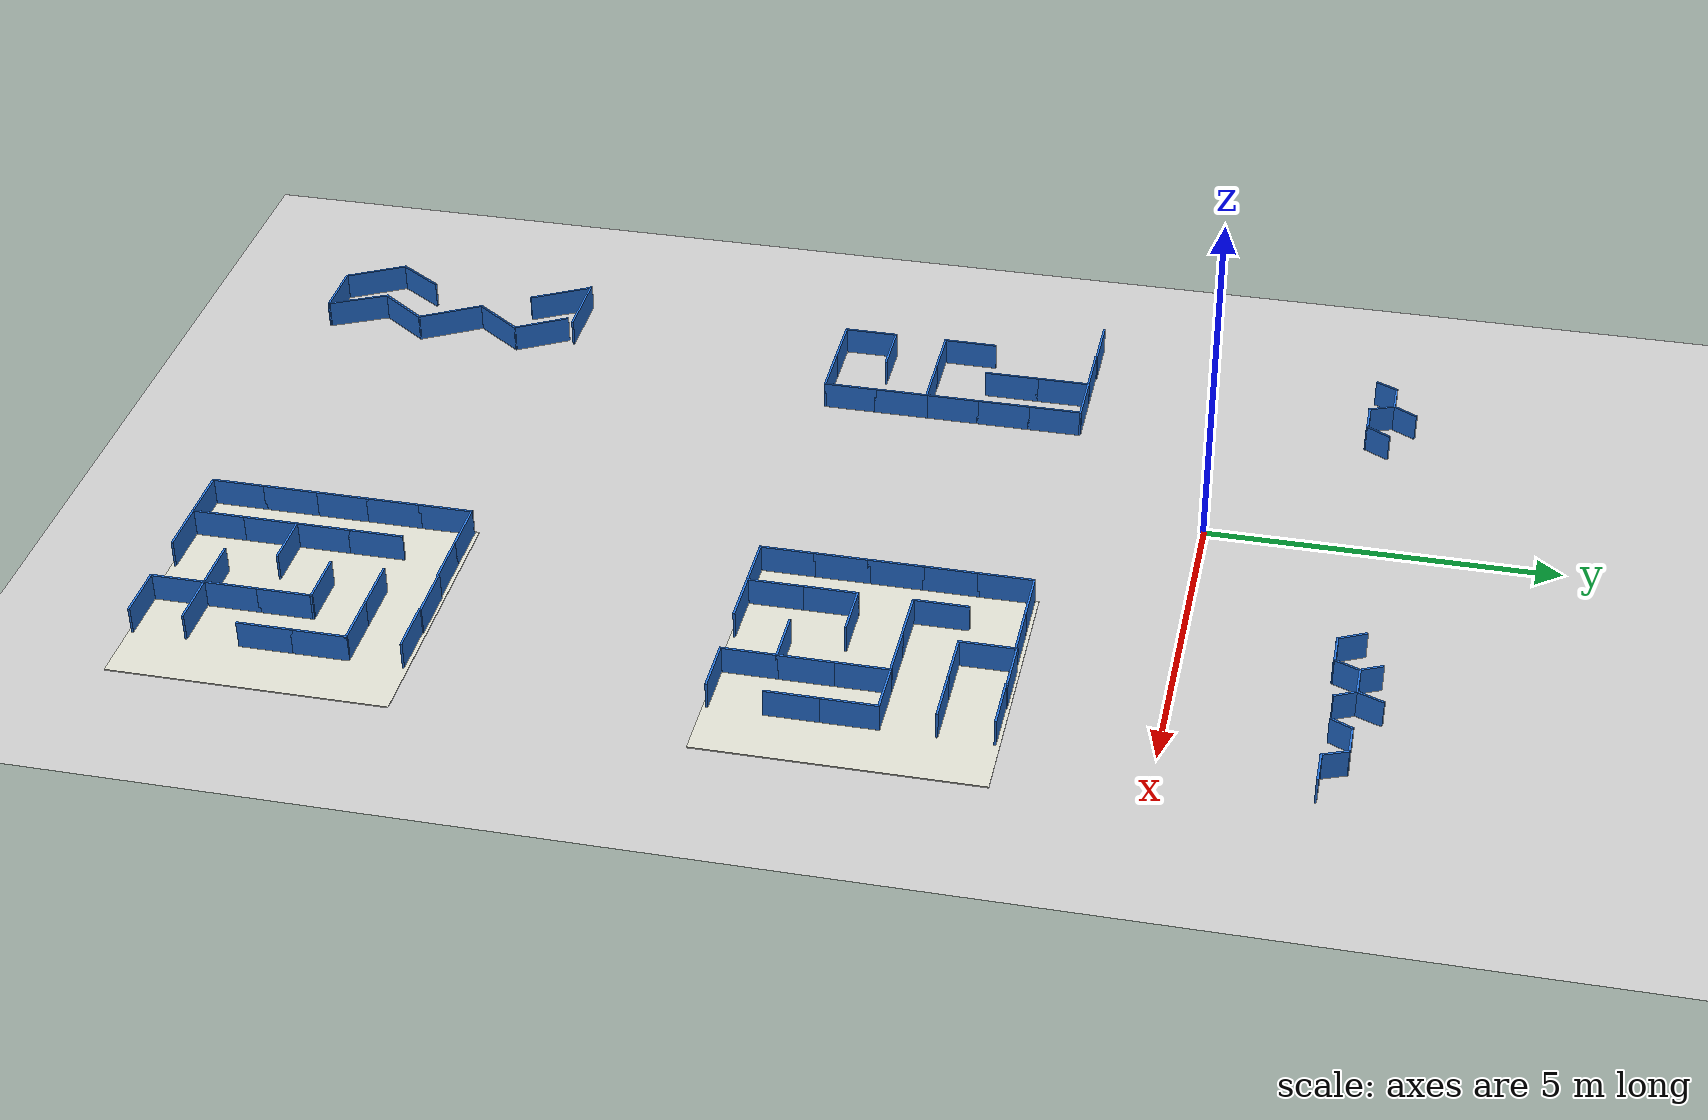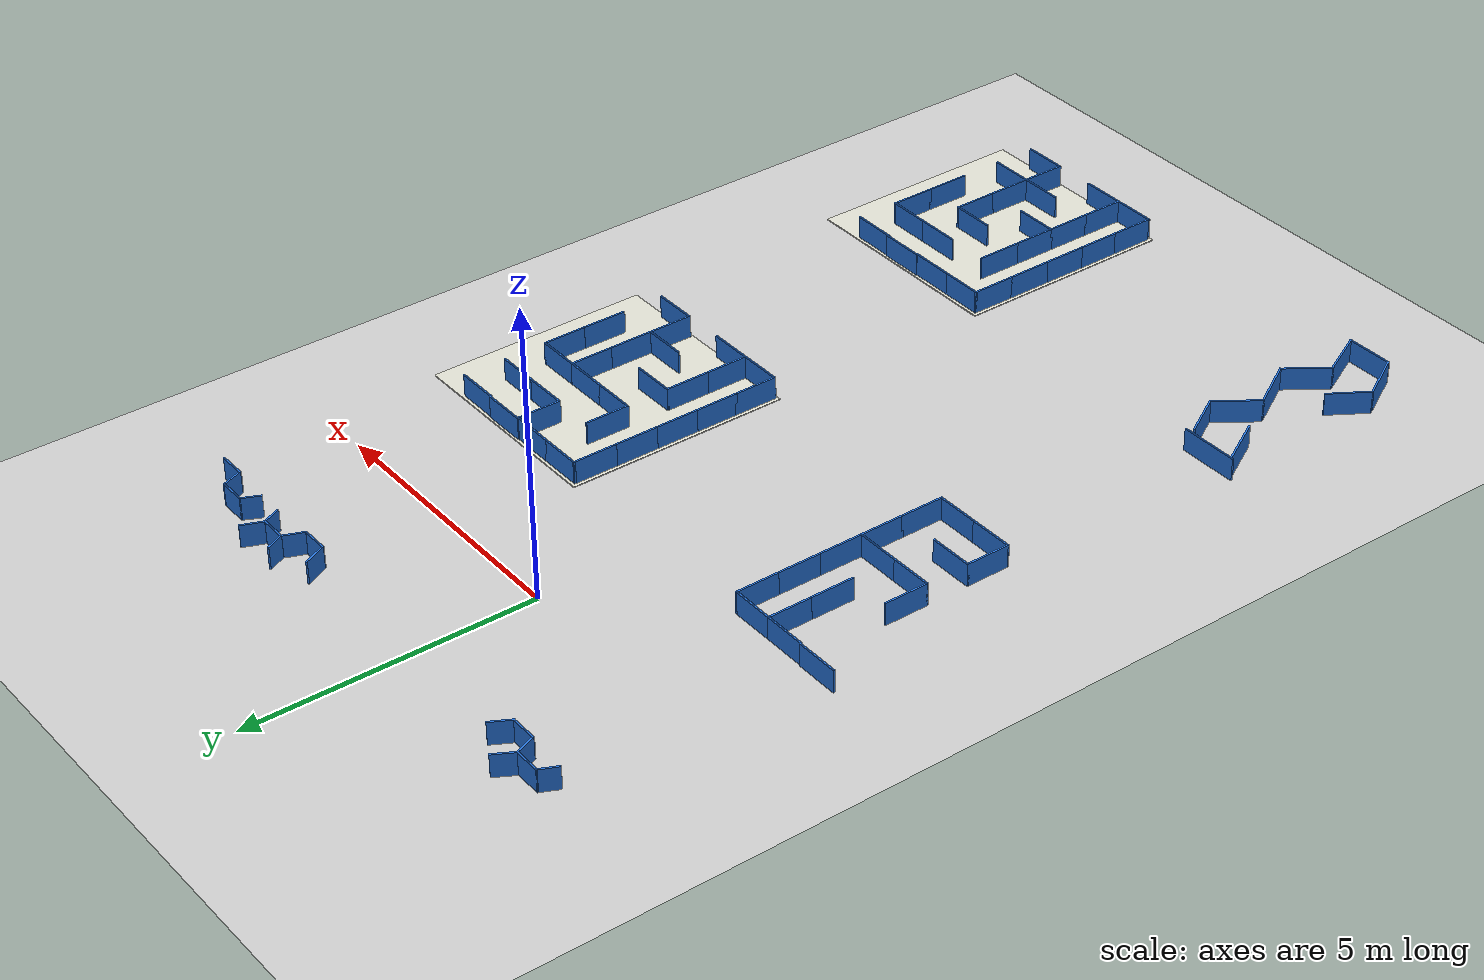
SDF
<sdf version="1.10">
 <world name="nhom8_maze_multi">
  <model name="ground_plane">
   <static>true</static>
   <link name="link">
    <collision name="collision">
     <geometry><plane><normal>0 0 1</normal><size>80.0 80.0</size></plane></geometry>
     <surface><friction><ode><mu>40</mu></ode></friction></surface>
    </collision>
    <visual name="visual">
     <geometry><plane><normal>0 0 1</normal><size>80.0 80.0</size></plane></geometry>
     <material>
      <ambient>0.8 0.8 0.8 1</ambient>
      <diffuse>0.8 0.8 0.8 1</diffuse>
      <specular>0.8 0.8 0.8 1</specular>
     </material>
    </visual>
   </link>
  </model>
  <model name="delta_2_wall_002">
   <static>true</static>
   <pose>-3.158700 -13.911000 0.2000 0 0 0.000000</pose>
   <link name="link">
    <collision name="col"><geometry><box><size>0.8626 0.0300 0.4000</size></box></geometry></collision>
    <visual name="vis">
     <geometry><box><size>0.8626 0.0300 0.4000</size></box></geometry>
     <material><ambient>0.15 0.45 0.85 1</ambient><diffuse>0.15 0.45 0.85 1</diffuse></material>
    </visual>
   </link>
  </model>
  <model name="delta_2_wall_003">
   <static>true</static>
   <pose>-2.857750 -10.539200 0.2000 0 0 -1.047182</pose>
   <link name="link">
    <collision name="col"><geometry><box><size>0.8522 0.0300 0.4000</size></box></geometry></collision>
    <visual name="vis">
     <geometry><box><size>0.8522 0.0300 0.4000</size></box></geometry>
     <material><ambient>0.15 0.45 0.85 1</ambient><diffuse>0.15 0.45 0.85 1</diffuse></material>
    </visual>
   </link>
  </model>
  <model name="delta_2_wall_004">
   <static>true</static>
   <pose>-3.759150 -10.492700 0.2000 0 0 -1.062197</pose>
   <link name="link">
    <collision name="col"><geometry><box><size>0.9514 0.0300 0.4000</size></box></geometry></collision>
    <visual name="vis">
     <geometry><box><size>0.9514 0.0300 0.4000</size></box></geometry>
     <material><ambient>0.15 0.45 0.85 1</ambient><diffuse>0.15 0.45 0.85 1</diffuse></material>
    </visual>
   </link>
  </model>
  <model name="delta_2_wall_005">
   <static>true</static>
   <pose>-2.896850 -12.000400 0.2000 0 0 -1.047181</pose>
   <link name="link">
    <collision name="col"><geometry><box><size>1.0074 0.0300 0.4000</size></box></geometry></collision>
    <visual name="vis">
     <geometry><box><size>1.0074 0.0300 0.4000</size></box></geometry>
     <material><ambient>0.15 0.45 0.85 1</ambient><diffuse>0.15 0.45 0.85 1</diffuse></material>
    </visual>
   </link>
  </model>
  <model name="delta_2_wall_006">
   <static>true</static>
   <pose>-2.942050 -13.507150 0.2000 0 0 -1.111713</pose>
   <link name="link">
    <collision name="col"><geometry><box><size>0.9309 0.0300 0.4000</size></box></geometry></collision>
    <visual name="vis">
     <geometry><box><size>0.9309 0.0300 0.4000</size></box></geometry>
     <material><ambient>0.15 0.45 0.85 1</ambient><diffuse>0.15 0.45 0.85 1</diffuse></material>
    </visual>
   </link>
  </model>
  <model name="delta_2_wall_008">
   <static>true</static>
   <pose>-3.799050 -13.507750 0.2000 0 0 -1.063616</pose>
   <link name="link">
    <collision name="col"><geometry><box><size>0.9526 0.0300 0.4000</size></box></geometry></collision>
    <visual name="vis">
     <geometry><box><size>0.9526 0.0300 0.4000</size></box></geometry>
     <material><ambient>0.15 0.45 0.85 1</ambient><diffuse>0.15 0.45 0.85 1</diffuse></material>
    </visual>
   </link>
  </model>
  <model name="delta_2_wall_010">
   <static>true</static>
   <pose>-2.897050 -12.763500 0.2000 0 0 0.946942</pose>
   <link name="link">
    <collision name="col"><geometry><box><size>0.8674 0.0300 0.4000</size></box></geometry></collision>
    <visual name="vis">
     <geometry><box><size>0.8674 0.0300 0.4000</size></box></geometry>
     <material><ambient>0.15 0.45 0.85 1</ambient><diffuse>0.15 0.45 0.85 1</diffuse></material>
    </visual>
   </link>
  </model>
  <model name="delta_2_wall_011">
   <static>true</static>
   <pose>-2.896700 -11.236150 0.2000 0 0 0.948768</pose>
   <link name="link">
    <collision name="col"><geometry><box><size>0.8691 0.0300 0.4000</size></box></geometry></collision>
    <visual name="vis">
     <geometry><box><size>0.8691 0.0300 0.4000</size></box></geometry>
     <material><ambient>0.15 0.45 0.85 1</ambient><diffuse>0.15 0.45 0.85 1</diffuse></material>
    </visual>
   </link>
  </model>
  <model name="delta_2_wall_012">
   <static>true</static>
   <pose>-3.817950 -12.790800 0.2000 0 0 0.991507</pose>
   <link name="link">
    <collision name="col"><geometry><box><size>0.7798 0.0300 0.4000</size></box></geometry></collision>
    <visual name="vis">
     <geometry><box><size>0.7798 0.0300 0.4000</size></box></geometry>
     <material><ambient>0.15 0.45 0.85 1</ambient><diffuse>0.15 0.45 0.85 1</diffuse></material>
    </visual>
   </link>
  </model>
  <model name="delta_2_wall_017">
   <static>true</static>
   <pose>-3.505100 -10.077200 0.2000 0 0 0.000000</pose>
   <link name="link">
    <collision name="col"><geometry><box><size>1.0600 0.0300 0.4000</size></box></geometry></collision>
    <visual name="vis">
     <geometry><box><size>1.0600 0.0300 0.4000</size></box></geometry>
     <material><ambient>0.15 0.45 0.85 1</ambient><diffuse>0.15 0.45 0.85 1</diffuse></material>
    </visual>
   </link>
  </model>
  <model name="ortho_1_wall_000">
   <static>true</static>
   <pose>2.082400 -10.465950 0.2000 0 0 1.570796</pose>
   <link name="link">
    <collision name="col"><geometry><box><size>0.7971 0.0300 0.4000</size></box></geometry></collision>
    <visual name="vis">
     <geometry><box><size>0.7971 0.0300 0.4000</size></box></geometry>
     <material><ambient>0.15 0.45 0.85 1</ambient><diffuse>0.15 0.45 0.85 1</diffuse></material>
    </visual>
   </link>
  </model>
  <model name="ortho_1_wall_001">
   <static>true</static>
   <pose>2.082400 -11.233000 0.2000 0 0 1.570796</pose>
   <link name="link">
    <collision name="col"><geometry><box><size>0.7970 0.0300 0.4000</size></box></geometry></collision>
    <visual name="vis">
     <geometry><box><size>0.7970 0.0300 0.4000</size></box></geometry>
     <material><ambient>0.15 0.45 0.85 1</ambient><diffuse>0.15 0.45 0.85 1</diffuse></material>
    </visual>
   </link>
  </model>
  <model name="ortho_1_wall_002">
   <static>true</static>
   <pose>2.082400 -12.000000 0.2000 0 0 1.570796</pose>
   <link name="link">
    <collision name="col"><geometry><box><size>0.7970 0.0300 0.4000</size></box></geometry></collision>
    <visual name="vis">
     <geometry><box><size>0.7970 0.0300 0.4000</size></box></geometry>
     <material><ambient>0.15 0.45 0.85 1</ambient><diffuse>0.15 0.45 0.85 1</diffuse></material>
    </visual>
   </link>
  </model>
  <model name="ortho_1_wall_003">
   <static>true</static>
   <pose>2.082400 -12.767000 0.2000 0 0 1.570796</pose>
   <link name="link">
    <collision name="col"><geometry><box><size>0.7970 0.0300 0.4000</size></box></geometry></collision>
    <visual name="vis">
     <geometry><box><size>0.7970 0.0300 0.4000</size></box></geometry>
     <material><ambient>0.15 0.45 0.85 1</ambient><diffuse>0.15 0.45 0.85 1</diffuse></material>
    </visual>
   </link>
  </model>
  <model name="ortho_1_wall_004">
   <static>true</static>
   <pose>2.082400 -13.534050 0.2000 0 0 1.570796</pose>
   <link name="link">
    <collision name="col"><geometry><box><size>0.7971 0.0300 0.4000</size></box></geometry></collision>
    <visual name="vis">
     <geometry><box><size>0.7971 0.0300 0.4000</size></box></geometry>
     <material><ambient>0.15 0.45 0.85 1</ambient><diffuse>0.15 0.45 0.85 1</diffuse></material>
    </visual>
   </link>
  </model>
  <model name="ortho_1_wall_005">
   <static>true</static>
   <pose>2.849500 -11.233000 0.2000 0 0 1.570796</pose>
   <link name="link">
    <collision name="col"><geometry><box><size>0.7970 0.0300 0.4000</size></box></geometry></collision>
    <visual name="vis">
     <geometry><box><size>0.7970 0.0300 0.4000</size></box></geometry>
     <material><ambient>0.15 0.45 0.85 1</ambient><diffuse>0.15 0.45 0.85 1</diffuse></material>
    </visual>
   </link>
  </model>
  <model name="ortho_1_wall_006">
   <static>true</static>
   <pose>2.849500 -12.000000 0.2000 0 0 1.570796</pose>
   <link name="link">
    <collision name="col"><geometry><box><size>0.7970 0.0300 0.4000</size></box></geometry></collision>
    <visual name="vis">
     <geometry><box><size>0.7970 0.0300 0.4000</size></box></geometry>
     <material><ambient>0.15 0.45 0.85 1</ambient><diffuse>0.15 0.45 0.85 1</diffuse></material>
    </visual>
   </link>
  </model>
  <model name="ortho_1_wall_007">
   <static>true</static>
   <pose>2.849500 -12.767000 0.2000 0 0 1.570796</pose>
   <link name="link">
    <collision name="col"><geometry><box><size>0.7970 0.0300 0.4000</size></box></geometry></collision>
    <visual name="vis">
     <geometry><box><size>0.7970 0.0300 0.4000</size></box></geometry>
     <material><ambient>0.15 0.45 0.85 1</ambient><diffuse>0.15 0.45 0.85 1</diffuse></material>
    </visual>
   </link>
  </model>
  <model name="ortho_1_wall_008">
   <static>true</static>
   <pose>2.849500 -13.534050 0.2000 0 0 1.570796</pose>
   <link name="link">
    <collision name="col"><geometry><box><size>0.7971 0.0300 0.4000</size></box></geometry></collision>
    <visual name="vis">
     <geometry><box><size>0.7971 0.0300 0.4000</size></box></geometry>
     <material><ambient>0.15 0.45 0.85 1</ambient><diffuse>0.15 0.45 0.85 1</diffuse></material>
    </visual>
   </link>
  </model>
  <model name="ortho_1_wall_009">
   <static>true</static>
   <pose>4.383500 -12.000000 0.2000 0 0 1.570796</pose>
   <link name="link">
    <collision name="col"><geometry><box><size>0.7970 0.0300 0.4000</size></box></geometry></collision>
    <visual name="vis">
     <geometry><box><size>0.7970 0.0300 0.4000</size></box></geometry>
     <material><ambient>0.15 0.45 0.85 1</ambient><diffuse>0.15 0.45 0.85 1</diffuse></material>
    </visual>
   </link>
  </model>
  <model name="ortho_1_wall_010">
   <static>true</static>
   <pose>4.383500 -12.767000 0.2000 0 0 1.570796</pose>
   <link name="link">
    <collision name="col"><geometry><box><size>0.7970 0.0300 0.4000</size></box></geometry></collision>
    <visual name="vis">
     <geometry><box><size>0.7970 0.0300 0.4000</size></box></geometry>
     <material><ambient>0.15 0.45 0.85 1</ambient><diffuse>0.15 0.45 0.85 1</diffuse></material>
    </visual>
   </link>
  </model>
  <model name="ortho_1_wall_011">
   <static>true</static>
   <pose>4.383500 -13.534050 0.2000 0 0 1.570796</pose>
   <link name="link">
    <collision name="col"><geometry><box><size>0.7971 0.0300 0.4000</size></box></geometry></collision>
    <visual name="vis">
     <geometry><box><size>0.7971 0.0300 0.4000</size></box></geometry>
     <material><ambient>0.15 0.45 0.85 1</ambient><diffuse>0.15 0.45 0.85 1</diffuse></material>
    </visual>
   </link>
  </model>
  <model name="ortho_1_wall_012">
   <static>true</static>
   <pose>5.150500 -11.233000 0.2000 0 0 1.570796</pose>
   <link name="link">
    <collision name="col"><geometry><box><size>0.7970 0.0300 0.4000</size></box></geometry></collision>
    <visual name="vis">
     <geometry><box><size>0.7970 0.0300 0.4000</size></box></geometry>
     <material><ambient>0.15 0.45 0.85 1</ambient><diffuse>0.15 0.45 0.85 1</diffuse></material>
    </visual>
   </link>
  </model>
  <model name="ortho_1_wall_013">
   <static>true</static>
   <pose>5.150500 -12.000000 0.2000 0 0 1.570796</pose>
   <link name="link">
    <collision name="col"><geometry><box><size>0.7970 0.0300 0.4000</size></box></geometry></collision>
    <visual name="vis">
     <geometry><box><size>0.7970 0.0300 0.4000</size></box></geometry>
     <material><ambient>0.15 0.45 0.85 1</ambient><diffuse>0.15 0.45 0.85 1</diffuse></material>
    </visual>
   </link>
  </model>
  <model name="ortho_1_wall_019">
   <static>true</static>
   <pose>2.465950 -10.082400 0.2000 0 0 0.000000</pose>
   <link name="link">
    <collision name="col"><geometry><box><size>0.7971 0.0300 0.4000</size></box></geometry></collision>
    <visual name="vis">
     <geometry><box><size>0.7971 0.0300 0.4000</size></box></geometry>
     <material><ambient>0.15 0.45 0.85 1</ambient><diffuse>0.15 0.45 0.85 1</diffuse></material>
    </visual>
   </link>
  </model>
  <model name="ortho_1_wall_020">
   <static>true</static>
   <pose>3.233000 -10.082400 0.2000 0 0 0.000000</pose>
   <link name="link">
    <collision name="col"><geometry><box><size>0.7970 0.0300 0.4000</size></box></geometry></collision>
    <visual name="vis">
     <geometry><box><size>0.7970 0.0300 0.4000</size></box></geometry>
     <material><ambient>0.15 0.45 0.85 1</ambient><diffuse>0.15 0.45 0.85 1</diffuse></material>
    </visual>
   </link>
  </model>
  <model name="ortho_1_wall_021">
   <static>true</static>
   <pose>4.767000 -10.082400 0.2000 0 0 0.000000</pose>
   <link name="link">
    <collision name="col"><geometry><box><size>0.7970 0.0300 0.4000</size></box></geometry></collision>
    <visual name="vis">
     <geometry><box><size>0.7970 0.0300 0.4000</size></box></geometry>
     <material><ambient>0.15 0.45 0.85 1</ambient><diffuse>0.15 0.45 0.85 1</diffuse></material>
    </visual>
   </link>
  </model>
  <model name="ortho_1_wall_023">
   <static>true</static>
   <pose>4.000000 -10.849500 0.2000 0 0 0.000000</pose>
   <link name="link">
    <collision name="col"><geometry><box><size>0.7970 0.0300 0.4000</size></box></geometry></collision>
    <visual name="vis">
     <geometry><box><size>0.7970 0.0300 0.4000</size></box></geometry>
     <material><ambient>0.15 0.45 0.85 1</ambient><diffuse>0.15 0.45 0.85 1</diffuse></material>
    </visual>
   </link>
  </model>
  <model name="ortho_1_wall_024">
   <static>true</static>
   <pose>4.767000 -10.849500 0.2000 0 0 0.000000</pose>
   <link name="link">
    <collision name="col"><geometry><box><size>0.7970 0.0300 0.4000</size></box></geometry></collision>
    <visual name="vis">
     <geometry><box><size>0.7970 0.0300 0.4000</size></box></geometry>
     <material><ambient>0.15 0.45 0.85 1</ambient><diffuse>0.15 0.45 0.85 1</diffuse></material>
    </visual>
   </link>
  </model>
  <model name="ortho_1_wall_025">
   <static>true</static>
   <pose>4.000000 -11.616500 0.2000 0 0 0.000000</pose>
   <link name="link">
    <collision name="col"><geometry><box><size>0.7970 0.0300 0.4000</size></box></geometry></collision>
    <visual name="vis">
     <geometry><box><size>0.7970 0.0300 0.4000</size></box></geometry>
     <material><ambient>0.15 0.45 0.85 1</ambient><diffuse>0.15 0.45 0.85 1</diffuse></material>
    </visual>
   </link>
  </model>
  <model name="ortho_1_wall_026">
   <static>true</static>
   <pose>3.233000 -12.383500 0.2000 0 0 0.000000</pose>
   <link name="link">
    <collision name="col"><geometry><box><size>0.7970 0.0300 0.4000</size></box></geometry></collision>
    <visual name="vis">
     <geometry><box><size>0.7970 0.0300 0.4000</size></box></geometry>
     <material><ambient>0.15 0.45 0.85 1</ambient><diffuse>0.15 0.45 0.85 1</diffuse></material>
    </visual>
   </link>
  </model>
  <model name="ortho_1_wall_028">
   <static>true</static>
   <pose>4.000000 -13.150500 0.2000 0 0 0.000000</pose>
   <link name="link">
    <collision name="col"><geometry><box><size>0.7970 0.0300 0.4000</size></box></geometry></collision>
    <visual name="vis">
     <geometry><box><size>0.7970 0.0300 0.4000</size></box></geometry>
     <material><ambient>0.15 0.45 0.85 1</ambient><diffuse>0.15 0.45 0.85 1</diffuse></material>
    </visual>
   </link>
  </model>
  <model name="ortho_1_wall_029">
   <static>true</static>
   <pose>4.767000 -13.150500 0.2000 0 0 0.000000</pose>
   <link name="link">
    <collision name="col"><geometry><box><size>0.7970 0.0300 0.4000</size></box></geometry></collision>
    <visual name="vis">
     <geometry><box><size>0.7970 0.0300 0.4000</size></box></geometry>
     <material><ambient>0.15 0.45 0.85 1</ambient><diffuse>0.15 0.45 0.85 1</diffuse></material>
    </visual>
   </link>
  </model>
  <model name="ortho_1_wall_030">
   <static>true</static>
   <pose>2.465950 -13.917600 0.2000 0 0 0.000000</pose>
   <link name="link">
    <collision name="col"><geometry><box><size>0.7971 0.0300 0.4000</size></box></geometry></collision>
    <visual name="vis">
     <geometry><box><size>0.7971 0.0300 0.4000</size></box></geometry>
     <material><ambient>0.15 0.45 0.85 1</ambient><diffuse>0.15 0.45 0.85 1</diffuse></material>
    </visual>
   </link>
  </model>
  <model name="ortho_1_wall_031">
   <static>true</static>
   <pose>3.233000 -13.917600 0.2000 0 0 0.000000</pose>
   <link name="link">
    <collision name="col"><geometry><box><size>0.7970 0.0300 0.4000</size></box></geometry></collision>
    <visual name="vis">
     <geometry><box><size>0.7970 0.0300 0.4000</size></box></geometry>
     <material><ambient>0.15 0.45 0.85 1</ambient><diffuse>0.15 0.45 0.85 1</diffuse></material>
    </visual>
   </link>
  </model>
  <model name="ortho_1_wall_032">
   <static>true</static>
   <pose>4.767000 -13.917600 0.2000 0 0 0.000000</pose>
   <link name="link">
    <collision name="col"><geometry><box><size>0.7970 0.0300 0.4000</size></box></geometry></collision>
    <visual name="vis">
     <geometry><box><size>0.7970 0.0300 0.4000</size></box></geometry>
     <material><ambient>0.15 0.45 0.85 1</ambient><diffuse>0.15 0.45 0.85 1</diffuse></material>
    </visual>
   </link>
  </model>
  <model name="ortho_1_wall_034">
   <static>true</static>
   <pose>4.003400 -10.067400 0.2000 0 0 0.000000</pose>
   <link name="link">
    <collision name="col"><geometry><box><size>0.7950 0.0300 0.4000</size></box></geometry></collision>
    <visual name="vis">
     <geometry><box><size>0.7950 0.0300 0.4000</size></box></geometry>
     <material><ambient>0.15 0.45 0.85 1</ambient><diffuse>0.15 0.45 0.85 1</diffuse></material>
    </visual>
   </link>
  </model>
  <model name="ortho_1_floor">
   <static>true</static>
   <pose>4.000000 -12.000000 -0.02 0 0 0</pose>
   <link name="link">
    <collision name="col"><geometry><box><size>3.9652 3.9652 0.03</size></box></geometry></collision>
    <visual name="vis">
     <geometry><box><size>3.9652 3.9652 0.03</size></box></geometry>
     <material><ambient>0.87 0.87 0.82 1</ambient><diffuse>0.87 0.87 0.82 1</diffuse></material>
    </visual>
   </link>
  </model>
  <model name="ortho_4_wall_009">
   <static>true</static>
   <pose>-3.616500 -4.000000 0.2000 0 0 1.570796</pose>
   <link name="link">
    <collision name="col"><geometry><box><size>0.7970 0.0300 0.4000</size></box></geometry></collision>
    <visual name="vis">
     <geometry><box><size>0.7970 0.0300 0.4000</size></box></geometry>
     <material><ambient>0.15 0.45 0.85 1</ambient><diffuse>0.15 0.45 0.85 1</diffuse></material>
    </visual>
   </link>
  </model>
  <model name="ortho_4_wall_010">
   <static>true</static>
   <pose>-3.616500 -5.534050 0.2000 0 0 1.570796</pose>
   <link name="link">
    <collision name="col"><geometry><box><size>0.7971 0.0300 0.4000</size></box></geometry></collision>
    <visual name="vis">
     <geometry><box><size>0.7971 0.0300 0.4000</size></box></geometry>
     <material><ambient>0.15 0.45 0.85 1</ambient><diffuse>0.15 0.45 0.85 1</diffuse></material>
    </visual>
   </link>
  </model>
  <model name="ortho_4_wall_011">
   <static>true</static>
   <pose>-2.849500 -2.465950 0.2000 0 0 1.570796</pose>
   <link name="link">
    <collision name="col"><geometry><box><size>0.7971 0.0300 0.4000</size></box></geometry></collision>
    <visual name="vis">
     <geometry><box><size>0.7971 0.0300 0.4000</size></box></geometry>
     <material><ambient>0.15 0.45 0.85 1</ambient><diffuse>0.15 0.45 0.85 1</diffuse></material>
    </visual>
   </link>
  </model>
  <model name="ortho_4_wall_012">
   <static>true</static>
   <pose>-2.849500 -3.233000 0.2000 0 0 1.570796</pose>
   <link name="link">
    <collision name="col"><geometry><box><size>0.7970 0.0300 0.4000</size></box></geometry></collision>
    <visual name="vis">
     <geometry><box><size>0.7970 0.0300 0.4000</size></box></geometry>
     <material><ambient>0.15 0.45 0.85 1</ambient><diffuse>0.15 0.45 0.85 1</diffuse></material>
    </visual>
   </link>
  </model>
  <model name="ortho_4_wall_013">
   <static>true</static>
   <pose>-2.082400 -2.465950 0.2000 0 0 1.570796</pose>
   <link name="link">
    <collision name="col"><geometry><box><size>0.7971 0.0300 0.4000</size></box></geometry></collision>
    <visual name="vis">
     <geometry><box><size>0.7971 0.0300 0.4000</size></box></geometry>
     <material><ambient>0.15 0.45 0.85 1</ambient><diffuse>0.15 0.45 0.85 1</diffuse></material>
    </visual>
   </link>
  </model>
  <model name="ortho_4_wall_014">
   <static>true</static>
   <pose>-2.082400 -3.233000 0.2000 0 0 1.570796</pose>
   <link name="link">
    <collision name="col"><geometry><box><size>0.7970 0.0300 0.4000</size></box></geometry></collision>
    <visual name="vis">
     <geometry><box><size>0.7970 0.0300 0.4000</size></box></geometry>
     <material><ambient>0.15 0.45 0.85 1</ambient><diffuse>0.15 0.45 0.85 1</diffuse></material>
    </visual>
   </link>
  </model>
  <model name="ortho_4_wall_015">
   <static>true</static>
   <pose>-2.082400 -4.000000 0.2000 0 0 1.570796</pose>
   <link name="link">
    <collision name="col"><geometry><box><size>0.7970 0.0300 0.4000</size></box></geometry></collision>
    <visual name="vis">
     <geometry><box><size>0.7970 0.0300 0.4000</size></box></geometry>
     <material><ambient>0.15 0.45 0.85 1</ambient><diffuse>0.15 0.45 0.85 1</diffuse></material>
    </visual>
   </link>
  </model>
  <model name="ortho_4_wall_016">
   <static>true</static>
   <pose>-2.082400 -4.767000 0.2000 0 0 1.570796</pose>
   <link name="link">
    <collision name="col"><geometry><box><size>0.7970 0.0300 0.4000</size></box></geometry></collision>
    <visual name="vis">
     <geometry><box><size>0.7970 0.0300 0.4000</size></box></geometry>
     <material><ambient>0.15 0.45 0.85 1</ambient><diffuse>0.15 0.45 0.85 1</diffuse></material>
    </visual>
   </link>
  </model>
  <model name="ortho_4_wall_017">
   <static>true</static>
   <pose>-2.082400 -5.534050 0.2000 0 0 1.570796</pose>
   <link name="link">
    <collision name="col"><geometry><box><size>0.7971 0.0300 0.4000</size></box></geometry></collision>
    <visual name="vis">
     <geometry><box><size>0.7971 0.0300 0.4000</size></box></geometry>
     <material><ambient>0.15 0.45 0.85 1</ambient><diffuse>0.15 0.45 0.85 1</diffuse></material>
    </visual>
   </link>
  </model>
  <model name="ortho_4_wall_020">
   <static>true</static>
   <pose>-3.233000 -2.082400 0.2000 0 0 0.000000</pose>
   <link name="link">
    <collision name="col"><geometry><box><size>0.7970 0.0300 0.4000</size></box></geometry></collision>
    <visual name="vis">
     <geometry><box><size>0.7970 0.0300 0.4000</size></box></geometry>
     <material><ambient>0.15 0.45 0.85 1</ambient><diffuse>0.15 0.45 0.85 1</diffuse></material>
    </visual>
   </link>
  </model>
  <model name="ortho_4_wall_021">
   <static>true</static>
   <pose>-2.465950 -2.082400 0.2000 0 0 0.000000</pose>
   <link name="link">
    <collision name="col"><geometry><box><size>0.7971 0.0300 0.4000</size></box></geometry></collision>
    <visual name="vis">
     <geometry><box><size>0.7971 0.0300 0.4000</size></box></geometry>
     <material><ambient>0.15 0.45 0.85 1</ambient><diffuse>0.15 0.45 0.85 1</diffuse></material>
    </visual>
   </link>
  </model>
  <model name="ortho_4_wall_025">
   <static>true</static>
   <pose>-3.233000 -4.383500 0.2000 0 0 0.000000</pose>
   <link name="link">
    <collision name="col"><geometry><box><size>0.7970 0.0300 0.4000</size></box></geometry></collision>
    <visual name="vis">
     <geometry><box><size>0.7970 0.0300 0.4000</size></box></geometry>
     <material><ambient>0.15 0.45 0.85 1</ambient><diffuse>0.15 0.45 0.85 1</diffuse></material>
    </visual>
   </link>
  </model>
  <model name="ortho_4_wall_026">
   <static>true</static>
   <pose>-2.465950 -4.383500 0.2000 0 0 0.000000</pose>
   <link name="link">
    <collision name="col"><geometry><box><size>0.7971 0.0300 0.4000</size></box></geometry></collision>
    <visual name="vis">
     <geometry><box><size>0.7971 0.0300 0.4000</size></box></geometry>
     <material><ambient>0.15 0.45 0.85 1</ambient><diffuse>0.15 0.45 0.85 1</diffuse></material>
    </visual>
   </link>
  </model>
  <model name="ortho_4_wall_029">
   <static>true</static>
   <pose>-3.233000 -5.150500 0.2000 0 0 0.000000</pose>
   <link name="link">
    <collision name="col"><geometry><box><size>0.7970 0.0300 0.4000</size></box></geometry></collision>
    <visual name="vis">
     <geometry><box><size>0.7970 0.0300 0.4000</size></box></geometry>
     <material><ambient>0.15 0.45 0.85 1</ambient><diffuse>0.15 0.45 0.85 1</diffuse></material>
    </visual>
   </link>
  </model>
  <model name="ortho_4_wall_032">
   <static>true</static>
   <pose>-3.233000 -5.917600 0.2000 0 0 0.000000</pose>
   <link name="link">
    <collision name="col"><geometry><box><size>0.7970 0.0300 0.4000</size></box></geometry></collision>
    <visual name="vis">
     <geometry><box><size>0.7970 0.0300 0.4000</size></box></geometry>
     <material><ambient>0.15 0.45 0.85 1</ambient><diffuse>0.15 0.45 0.85 1</diffuse></material>
    </visual>
   </link>
  </model>
  <model name="ortho_4_wall_033">
   <static>true</static>
   <pose>-2.465950 -5.917600 0.2000 0 0 0.000000</pose>
   <link name="link">
    <collision name="col"><geometry><box><size>0.7971 0.0300 0.4000</size></box></geometry></collision>
    <visual name="vis">
     <geometry><box><size>0.7971 0.0300 0.4000</size></box></geometry>
     <material><ambient>0.15 0.45 0.85 1</ambient><diffuse>0.15 0.45 0.85 1</diffuse></material>
    </visual>
   </link>
  </model>
  <model name="ortho_4_wall_034">
   <static>true</static>
   <pose>-3.996600 -2.067400 0.2000 0 0 0.000000</pose>
   <link name="link">
    <collision name="col"><geometry><box><size>0.7950 0.0300 0.4000</size></box></geometry></collision>
    <visual name="vis">
     <geometry><box><size>0.7950 0.0300 0.4000</size></box></geometry>
     <material><ambient>0.15 0.45 0.85 1</ambient><diffuse>0.15 0.45 0.85 1</diffuse></material>
    </visual>
   </link>
  </model>
  <model name="ortho_5_wall_000">
   <static>true</static>
   <pose>2.082400 -2.465950 0.2000 0 0 1.570796</pose>
   <link name="link">
    <collision name="col"><geometry><box><size>0.7971 0.0300 0.4000</size></box></geometry></collision>
    <visual name="vis">
     <geometry><box><size>0.7971 0.0300 0.4000</size></box></geometry>
     <material><ambient>0.15 0.45 0.85 1</ambient><diffuse>0.15 0.45 0.85 1</diffuse></material>
    </visual>
   </link>
  </model>
  <model name="ortho_5_wall_001">
   <static>true</static>
   <pose>2.082400 -3.233000 0.2000 0 0 1.570796</pose>
   <link name="link">
    <collision name="col"><geometry><box><size>0.7970 0.0300 0.4000</size></box></geometry></collision>
    <visual name="vis">
     <geometry><box><size>0.7970 0.0300 0.4000</size></box></geometry>
     <material><ambient>0.15 0.45 0.85 1</ambient><diffuse>0.15 0.45 0.85 1</diffuse></material>
    </visual>
   </link>
  </model>
  <model name="ortho_5_wall_002">
   <static>true</static>
   <pose>2.082400 -4.000000 0.2000 0 0 1.570796</pose>
   <link name="link">
    <collision name="col"><geometry><box><size>0.7970 0.0300 0.4000</size></box></geometry></collision>
    <visual name="vis">
     <geometry><box><size>0.7970 0.0300 0.4000</size></box></geometry>
     <material><ambient>0.15 0.45 0.85 1</ambient><diffuse>0.15 0.45 0.85 1</diffuse></material>
    </visual>
   </link>
  </model>
  <model name="ortho_5_wall_003">
   <static>true</static>
   <pose>2.082400 -4.767000 0.2000 0 0 1.570796</pose>
   <link name="link">
    <collision name="col"><geometry><box><size>0.7970 0.0300 0.4000</size></box></geometry></collision>
    <visual name="vis">
     <geometry><box><size>0.7970 0.0300 0.4000</size></box></geometry>
     <material><ambient>0.15 0.45 0.85 1</ambient><diffuse>0.15 0.45 0.85 1</diffuse></material>
    </visual>
   </link>
  </model>
  <model name="ortho_5_wall_004">
   <static>true</static>
   <pose>2.082400 -5.534050 0.2000 0 0 1.570796</pose>
   <link name="link">
    <collision name="col"><geometry><box><size>0.7971 0.0300 0.4000</size></box></geometry></collision>
    <visual name="vis">
     <geometry><box><size>0.7971 0.0300 0.4000</size></box></geometry>
     <material><ambient>0.15 0.45 0.85 1</ambient><diffuse>0.15 0.45 0.85 1</diffuse></material>
    </visual>
   </link>
  </model>
  <model name="ortho_5_wall_005">
   <static>true</static>
   <pose>2.849500 -3.233000 0.2000 0 0 1.570796</pose>
   <link name="link">
    <collision name="col"><geometry><box><size>0.7970 0.0300 0.4000</size></box></geometry></collision>
    <visual name="vis">
     <geometry><box><size>0.7970 0.0300 0.4000</size></box></geometry>
     <material><ambient>0.15 0.45 0.85 1</ambient><diffuse>0.15 0.45 0.85 1</diffuse></material>
    </visual>
   </link>
  </model>
  <model name="ortho_5_wall_006">
   <static>true</static>
   <pose>2.849500 -4.767000 0.2000 0 0 1.570796</pose>
   <link name="link">
    <collision name="col"><geometry><box><size>0.7970 0.0300 0.4000</size></box></geometry></collision>
    <visual name="vis">
     <geometry><box><size>0.7970 0.0300 0.4000</size></box></geometry>
     <material><ambient>0.15 0.45 0.85 1</ambient><diffuse>0.15 0.45 0.85 1</diffuse></material>
    </visual>
   </link>
  </model>
  <model name="ortho_5_wall_007">
   <static>true</static>
   <pose>2.849500 -5.534050 0.2000 0 0 1.570796</pose>
   <link name="link">
    <collision name="col"><geometry><box><size>0.7971 0.0300 0.4000</size></box></geometry></collision>
    <visual name="vis">
     <geometry><box><size>0.7971 0.0300 0.4000</size></box></geometry>
     <material><ambient>0.15 0.45 0.85 1</ambient><diffuse>0.15 0.45 0.85 1</diffuse></material>
    </visual>
   </link>
  </model>
  <model name="ortho_5_wall_008">
   <static>true</static>
   <pose>3.616500 -2.465950 0.2000 0 0 1.570796</pose>
   <link name="link">
    <collision name="col"><geometry><box><size>0.7971 0.0300 0.4000</size></box></geometry></collision>
    <visual name="vis">
     <geometry><box><size>0.7971 0.0300 0.4000</size></box></geometry>
     <material><ambient>0.15 0.45 0.85 1</ambient><diffuse>0.15 0.45 0.85 1</diffuse></material>
    </visual>
   </link>
  </model>
  <model name="ortho_5_wall_009">
   <static>true</static>
   <pose>4.383500 -4.000000 0.2000 0 0 1.570796</pose>
   <link name="link">
    <collision name="col"><geometry><box><size>0.7970 0.0300 0.4000</size></box></geometry></collision>
    <visual name="vis">
     <geometry><box><size>0.7970 0.0300 0.4000</size></box></geometry>
     <material><ambient>0.15 0.45 0.85 1</ambient><diffuse>0.15 0.45 0.85 1</diffuse></material>
    </visual>
   </link>
  </model>
  <model name="ortho_5_wall_010">
   <static>true</static>
   <pose>4.383500 -4.767000 0.2000 0 0 1.570796</pose>
   <link name="link">
    <collision name="col"><geometry><box><size>0.7970 0.0300 0.4000</size></box></geometry></collision>
    <visual name="vis">
     <geometry><box><size>0.7970 0.0300 0.4000</size></box></geometry>
     <material><ambient>0.15 0.45 0.85 1</ambient><diffuse>0.15 0.45 0.85 1</diffuse></material>
    </visual>
   </link>
  </model>
  <model name="ortho_5_wall_011">
   <static>true</static>
   <pose>4.383500 -5.534050 0.2000 0 0 1.570796</pose>
   <link name="link">
    <collision name="col"><geometry><box><size>0.7971 0.0300 0.4000</size></box></geometry></collision>
    <visual name="vis">
     <geometry><box><size>0.7971 0.0300 0.4000</size></box></geometry>
     <material><ambient>0.15 0.45 0.85 1</ambient><diffuse>0.15 0.45 0.85 1</diffuse></material>
    </visual>
   </link>
  </model>
  <model name="ortho_5_wall_012">
   <static>true</static>
   <pose>5.150500 -4.000000 0.2000 0 0 1.570796</pose>
   <link name="link">
    <collision name="col"><geometry><box><size>0.7970 0.0300 0.4000</size></box></geometry></collision>
    <visual name="vis">
     <geometry><box><size>0.7970 0.0300 0.4000</size></box></geometry>
     <material><ambient>0.15 0.45 0.85 1</ambient><diffuse>0.15 0.45 0.85 1</diffuse></material>
    </visual>
   </link>
  </model>
  <model name="ortho_5_wall_013">
   <static>true</static>
   <pose>5.150500 -4.767000 0.2000 0 0 1.570796</pose>
   <link name="link">
    <collision name="col"><geometry><box><size>0.7970 0.0300 0.4000</size></box></geometry></collision>
    <visual name="vis">
     <geometry><box><size>0.7970 0.0300 0.4000</size></box></geometry>
     <material><ambient>0.15 0.45 0.85 1</ambient><diffuse>0.15 0.45 0.85 1</diffuse></material>
    </visual>
   </link>
  </model>
  <model name="ortho_5_wall_019">
   <static>true</static>
   <pose>2.465950 -2.082400 0.2000 0 0 0.000000</pose>
   <link name="link">
    <collision name="col"><geometry><box><size>0.7971 0.0300 0.4000</size></box></geometry></collision>
    <visual name="vis">
     <geometry><box><size>0.7971 0.0300 0.4000</size></box></geometry>
     <material><ambient>0.15 0.45 0.85 1</ambient><diffuse>0.15 0.45 0.85 1</diffuse></material>
    </visual>
   </link>
  </model>
  <model name="ortho_5_wall_020">
   <static>true</static>
   <pose>3.233000 -2.082400 0.2000 0 0 0.000000</pose>
   <link name="link">
    <collision name="col"><geometry><box><size>0.7970 0.0300 0.4000</size></box></geometry></collision>
    <visual name="vis">
     <geometry><box><size>0.7970 0.0300 0.4000</size></box></geometry>
     <material><ambient>0.15 0.45 0.85 1</ambient><diffuse>0.15 0.45 0.85 1</diffuse></material>
    </visual>
   </link>
  </model>
  <model name="ortho_5_wall_021">
   <static>true</static>
   <pose>4.767000 -2.082400 0.2000 0 0 0.000000</pose>
   <link name="link">
    <collision name="col"><geometry><box><size>0.7970 0.0300 0.4000</size></box></geometry></collision>
    <visual name="vis">
     <geometry><box><size>0.7970 0.0300 0.4000</size></box></geometry>
     <material><ambient>0.15 0.45 0.85 1</ambient><diffuse>0.15 0.45 0.85 1</diffuse></material>
    </visual>
   </link>
  </model>
  <model name="ortho_5_wall_023">
   <static>true</static>
   <pose>4.000000 -2.849500 0.2000 0 0 0.000000</pose>
   <link name="link">
    <collision name="col"><geometry><box><size>0.7970 0.0300 0.4000</size></box></geometry></collision>
    <visual name="vis">
     <geometry><box><size>0.7970 0.0300 0.4000</size></box></geometry>
     <material><ambient>0.15 0.45 0.85 1</ambient><diffuse>0.15 0.45 0.85 1</diffuse></material>
    </visual>
   </link>
  </model>
  <model name="ortho_5_wall_024">
   <static>true</static>
   <pose>4.767000 -2.849500 0.2000 0 0 0.000000</pose>
   <link name="link">
    <collision name="col"><geometry><box><size>0.7970 0.0300 0.4000</size></box></geometry></collision>
    <visual name="vis">
     <geometry><box><size>0.7970 0.0300 0.4000</size></box></geometry>
     <material><ambient>0.15 0.45 0.85 1</ambient><diffuse>0.15 0.45 0.85 1</diffuse></material>
    </visual>
   </link>
  </model>
  <model name="ortho_5_wall_025">
   <static>true</static>
   <pose>3.233000 -3.616500 0.2000 0 0 0.000000</pose>
   <link name="link">
    <collision name="col"><geometry><box><size>0.7970 0.0300 0.4000</size></box></geometry></collision>
    <visual name="vis">
     <geometry><box><size>0.7970 0.0300 0.4000</size></box></geometry>
     <material><ambient>0.15 0.45 0.85 1</ambient><diffuse>0.15 0.45 0.85 1</diffuse></material>
    </visual>
   </link>
  </model>
  <model name="ortho_5_wall_026">
   <static>true</static>
   <pose>4.000000 -3.616500 0.2000 0 0 0.000000</pose>
   <link name="link">
    <collision name="col"><geometry><box><size>0.7970 0.0300 0.4000</size></box></geometry></collision>
    <visual name="vis">
     <geometry><box><size>0.7970 0.0300 0.4000</size></box></geometry>
     <material><ambient>0.15 0.45 0.85 1</ambient><diffuse>0.15 0.45 0.85 1</diffuse></material>
    </visual>
   </link>
  </model>
  <model name="ortho_5_wall_027">
   <static>true</static>
   <pose>4.767000 -3.616500 0.2000 0 0 0.000000</pose>
   <link name="link">
    <collision name="col"><geometry><box><size>0.7970 0.0300 0.4000</size></box></geometry></collision>
    <visual name="vis">
     <geometry><box><size>0.7970 0.0300 0.4000</size></box></geometry>
     <material><ambient>0.15 0.45 0.85 1</ambient><diffuse>0.15 0.45 0.85 1</diffuse></material>
    </visual>
   </link>
  </model>
  <model name="ortho_5_wall_028">
   <static>true</static>
   <pose>3.233000 -4.383500 0.2000 0 0 0.000000</pose>
   <link name="link">
    <collision name="col"><geometry><box><size>0.7970 0.0300 0.4000</size></box></geometry></collision>
    <visual name="vis">
     <geometry><box><size>0.7970 0.0300 0.4000</size></box></geometry>
     <material><ambient>0.15 0.45 0.85 1</ambient><diffuse>0.15 0.45 0.85 1</diffuse></material>
    </visual>
   </link>
  </model>
  <model name="ortho_5_wall_029">
   <static>true</static>
   <pose>4.000000 -5.150500 0.2000 0 0 0.000000</pose>
   <link name="link">
    <collision name="col"><geometry><box><size>0.7970 0.0300 0.4000</size></box></geometry></collision>
    <visual name="vis">
     <geometry><box><size>0.7970 0.0300 0.4000</size></box></geometry>
     <material><ambient>0.15 0.45 0.85 1</ambient><diffuse>0.15 0.45 0.85 1</diffuse></material>
    </visual>
   </link>
  </model>
  <model name="ortho_5_wall_030">
   <static>true</static>
   <pose>2.465950 -5.917600 0.2000 0 0 0.000000</pose>
   <link name="link">
    <collision name="col"><geometry><box><size>0.7971 0.0300 0.4000</size></box></geometry></collision>
    <visual name="vis">
     <geometry><box><size>0.7971 0.0300 0.4000</size></box></geometry>
     <material><ambient>0.15 0.45 0.85 1</ambient><diffuse>0.15 0.45 0.85 1</diffuse></material>
    </visual>
   </link>
  </model>
  <model name="ortho_5_wall_031">
   <static>true</static>
   <pose>3.233000 -5.917600 0.2000 0 0 0.000000</pose>
   <link name="link">
    <collision name="col"><geometry><box><size>0.7970 0.0300 0.4000</size></box></geometry></collision>
    <visual name="vis">
     <geometry><box><size>0.7970 0.0300 0.4000</size></box></geometry>
     <material><ambient>0.15 0.45 0.85 1</ambient><diffuse>0.15 0.45 0.85 1</diffuse></material>
    </visual>
   </link>
  </model>
  <model name="ortho_5_wall_032">
   <static>true</static>
   <pose>4.767000 -5.917600 0.2000 0 0 0.000000</pose>
   <link name="link">
    <collision name="col"><geometry><box><size>0.7970 0.0300 0.4000</size></box></geometry></collision>
    <visual name="vis">
     <geometry><box><size>0.7970 0.0300 0.4000</size></box></geometry>
     <material><ambient>0.15 0.45 0.85 1</ambient><diffuse>0.15 0.45 0.85 1</diffuse></material>
    </visual>
   </link>
  </model>
  <model name="ortho_5_wall_034">
   <static>true</static>
   <pose>4.003400 -2.067400 0.2000 0 0 0.000000</pose>
   <link name="link">
    <collision name="col"><geometry><box><size>0.7950 0.0300 0.4000</size></box></geometry></collision>
    <visual name="vis">
     <geometry><box><size>0.7950 0.0300 0.4000</size></box></geometry>
     <material><ambient>0.15 0.45 0.85 1</ambient><diffuse>0.15 0.45 0.85 1</diffuse></material>
    </visual>
   </link>
  </model>
  <model name="ortho_5_floor">
   <static>true</static>
   <pose>4.000000 -4.000000 -0.02 0 0 0</pose>
   <link name="link">
    <collision name="col"><geometry><box><size>3.9652 3.9652 0.03</size></box></geometry></collision>
    <visual name="vis">
     <geometry><box><size>3.9652 3.9652 0.03</size></box></geometry>
     <material><ambient>0.87 0.87 0.82 1</ambient><diffuse>0.87 0.87 0.82 1</diffuse></material>
    </visual>
   </link>
  </model>
  <model name="sigma_2_wall_016">
   <static>true</static>
   <pose>-3.391650 2.419600 0.2000 0 0 0.000000</pose>
   <link name="link">
    <collision name="col"><geometry><box><size>0.4933 0.0300 0.4000</size></box></geometry></collision>
    <visual name="vis">
     <geometry><box><size>0.4933 0.0300 0.4000</size></box></geometry>
     <material><ambient>0.15 0.45 0.85 1</ambient><diffuse>0.15 0.45 0.85 1</diffuse></material>
    </visual>
   </link>
  </model>
  <model name="sigma_2_wall_018">
   <static>true</static>
   <pose>-2.782300 2.073700 0.2000 0 0 0.000000</pose>
   <link name="link">
    <collision name="col"><geometry><box><size>0.4992 0.0300 0.4000</size></box></geometry></collision>
    <visual name="vis">
     <geometry><box><size>0.4992 0.0300 0.4000</size></box></geometry>
     <material><ambient>0.15 0.45 0.85 1</ambient><diffuse>0.15 0.45 0.85 1</diffuse></material>
    </visual>
   </link>
  </model>
  <model name="sigma_2_wall_033">
   <static>true</static>
   <pose>-3.088450 2.246650 0.2000 0 0 -1.178117</pose>
   <link name="link">
    <collision name="col"><geometry><box><size>0.4043 0.0300 0.4000</size></box></geometry></collision>
    <visual name="vis">
     <geometry><box><size>0.4043 0.0300 0.4000</size></box></geometry>
     <material><ambient>0.15 0.45 0.85 1</ambient><diffuse>0.15 0.45 0.85 1</diffuse></material>
    </visual>
   </link>
  </model>
  <model name="sigma_2_wall_042">
   <static>true</static>
   <pose>-2.455350 2.235700 0.2000 0 0 1.052728</pose>
   <link name="link">
    <collision name="col"><geometry><box><size>0.4029 0.0300 0.4000</size></box></geometry></collision>
    <visual name="vis">
     <geometry><box><size>0.4029 0.0300 0.4000</size></box></geometry>
     <material><ambient>0.15 0.45 0.85 1</ambient><diffuse>0.15 0.45 0.85 1</diffuse></material>
    </visual>
   </link>
  </model>
  <model name="sigma_2_wall_045">
   <static>true</static>
   <pose>-3.064850 2.582850 0.2000 0 0 1.042986</pose>
   <link name="link">
    <collision name="col"><geometry><box><size>0.4080 0.0300 0.4000</size></box></geometry></collision>
    <visual name="vis">
     <geometry><box><size>0.4080 0.0300 0.4000</size></box></geometry>
     <material><ambient>0.15 0.45 0.85 1</ambient><diffuse>0.15 0.45 0.85 1</diffuse></material>
    </visual>
   </link>
  </model>
  <model name="sigma_2_wall_047">
   <static>true</static>
   <pose>-3.692050 2.275900 0.2000 0 0 1.124342</pose>
   <link name="link">
    <collision name="col"><geometry><box><size>0.3486 0.0300 0.4000</size></box></geometry></collision>
    <visual name="vis">
     <geometry><box><size>0.3486 0.0300 0.4000</size></box></geometry>
     <material><ambient>0.15 0.45 0.85 1</ambient><diffuse>0.15 0.45 0.85 1</diffuse></material>
    </visual>
   </link>
  </model>
  <model name="sigma_3_wall_014">
   <static>true</static>
   <pose>3.392200 2.419200 0.2000 0 0 0.000000</pose>
   <link name="link">
    <collision name="col"><geometry><box><size>0.4934 0.0300 0.4000</size></box></geometry></collision>
    <visual name="vis">
     <geometry><box><size>0.4934 0.0300 0.4000</size></box></geometry>
     <material><ambient>0.15 0.45 0.85 1</ambient><diffuse>0.15 0.45 0.85 1</diffuse></material>
    </visual>
   </link>
  </model>
  <model name="sigma_3_wall_015">
   <static>true</static>
   <pose>4.609950 2.419200 0.2000 0 0 0.000000</pose>
   <link name="link">
    <collision name="col"><geometry><box><size>0.4961 0.0300 0.4000</size></box></geometry></collision>
    <visual name="vis">
     <geometry><box><size>0.4961 0.0300 0.4000</size></box></geometry>
     <material><ambient>0.15 0.45 0.85 1</ambient><diffuse>0.15 0.45 0.85 1</diffuse></material>
    </visual>
   </link>
  </model>
  <model name="sigma_3_wall_016">
   <static>true</static>
   <pose>2.782650 2.073700 0.2000 0 0 0.000000</pose>
   <link name="link">
    <collision name="col"><geometry><box><size>0.4993 0.0300 0.4000</size></box></geometry></collision>
    <visual name="vis">
     <geometry><box><size>0.4993 0.0300 0.4000</size></box></geometry>
     <material><ambient>0.15 0.45 0.85 1</ambient><diffuse>0.15 0.45 0.85 1</diffuse></material>
    </visual>
   </link>
  </model>
  <model name="sigma_3_wall_017">
   <static>true</static>
   <pose>5.217550 2.073700 0.2000 0 0 0.000000</pose>
   <link name="link">
    <collision name="col"><geometry><box><size>0.4995 0.0300 0.4000</size></box></geometry></collision>
    <visual name="vis">
     <geometry><box><size>0.4995 0.0300 0.4000</size></box></geometry>
     <material><ambient>0.15 0.45 0.85 1</ambient><diffuse>0.15 0.45 0.85 1</diffuse></material>
    </visual>
   </link>
  </model>
  <model name="sigma_3_wall_032">
   <static>true</static>
   <pose>4.912850 2.246450 0.2000 0 0 -1.186186</pose>
   <link name="link">
    <collision name="col"><geometry><box><size>0.4027 0.0300 0.4000</size></box></geometry></collision>
    <visual name="vis">
     <geometry><box><size>0.4027 0.0300 0.4000</size></box></geometry>
     <material><ambient>0.15 0.45 0.85 1</ambient><diffuse>0.15 0.45 0.85 1</diffuse></material>
    </visual>
   </link>
  </model>
  <model name="sigma_3_wall_038">
   <static>true</static>
   <pose>3.692650 2.275850 0.2000 0 0 -1.123473</pose>
   <link name="link">
    <collision name="col"><geometry><box><size>0.3479 0.0300 0.4000</size></box></geometry></collision>
    <visual name="vis">
     <geometry><box><size>0.3479 0.0300 0.4000</size></box></geometry>
     <material><ambient>0.15 0.45 0.85 1</ambient><diffuse>0.15 0.45 0.85 1</diffuse></material>
    </visual>
   </link>
  </model>
  <model name="sigma_3_wall_040">
   <static>true</static>
   <pose>3.091400 2.564600 0.2000 0 0 -1.127476</pose>
   <link name="link">
    <collision name="col"><geometry><box><size>0.3520 0.0300 0.4000</size></box></geometry></collision>
    <visual name="vis">
     <geometry><box><size>0.3520 0.0300 0.4000</size></box></geometry>
     <material><ambient>0.15 0.45 0.85 1</ambient><diffuse>0.15 0.45 0.85 1</diffuse></material>
    </visual>
   </link>
  </model>
  <model name="sigma_3_wall_042">
   <static>true</static>
   <pose>2.455950 2.260150 0.2000 0 0 -1.112266</pose>
   <link name="link">
    <collision name="col"><geometry><box><size>0.4457 0.0300 0.4000</size></box></geometry></collision>
    <visual name="vis">
     <geometry><box><size>0.4457 0.0300 0.4000</size></box></geometry>
     <material><ambient>0.15 0.45 0.85 1</ambient><diffuse>0.15 0.45 0.85 1</diffuse></material>
    </visual>
   </link>
  </model>
  <model name="sigma_3_wall_047">
   <static>true</static>
   <pose>4.308200 2.275600 0.2000 0 0 1.124353</pose>
   <link name="link">
    <collision name="col"><geometry><box><size>0.3483 0.0300 0.4000</size></box></geometry></collision>
    <visual name="vis">
     <geometry><box><size>0.3483 0.0300 0.4000</size></box></geometry>
     <material><ambient>0.15 0.45 0.85 1</ambient><diffuse>0.15 0.45 0.85 1</diffuse></material>
    </visual>
   </link>
  </model>
  <model name="sigma_3_wall_052">
   <static>true</static>
   <pose>3.696550 2.596900 0.2000 0 0 1.182620</pose>
   <link name="link">
    <collision name="col"><geometry><box><size>0.4140 0.0300 0.4000</size></box></geometry></collision>
    <visual name="vis">
     <geometry><box><size>0.4140 0.0300 0.4000</size></box></geometry>
     <material><ambient>0.15 0.45 0.85 1</ambient><diffuse>0.15 0.45 0.85 1</diffuse></material>
    </visual>
   </link>
  </model>
  <model name="sigma_3_wall_054">
   <static>true</static>
   <pose>3.088850 2.246500 0.2000 0 0 1.177833</pose>
   <link name="link">
    <collision name="col"><geometry><box><size>0.4040 0.0300 0.4000</size></box></geometry></collision>
    <visual name="vis">
     <geometry><box><size>0.4040 0.0300 0.4000</size></box></geometry>
     <material><ambient>0.15 0.45 0.85 1</ambient><diffuse>0.15 0.45 0.85 1</diffuse></material>
    </visual>
   </link>
  </model>
 </world>
</sdf>
